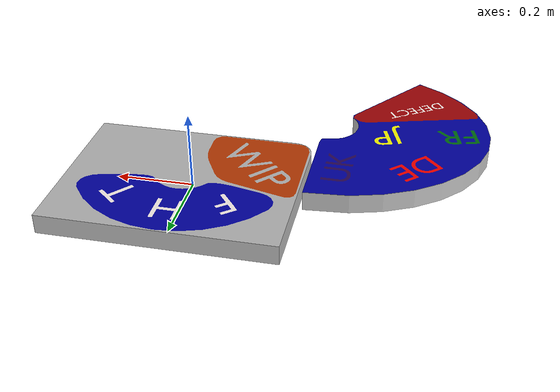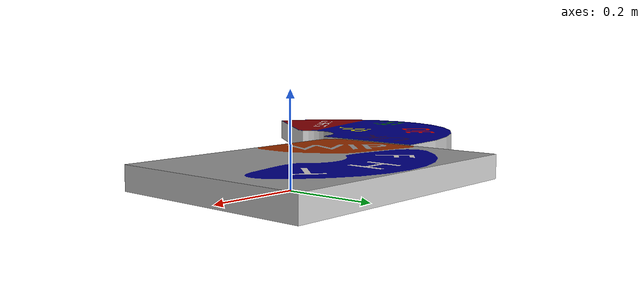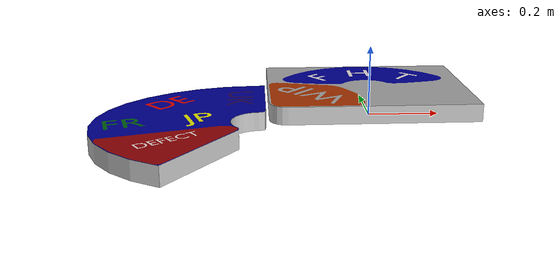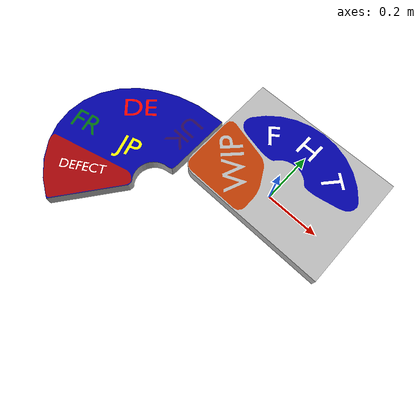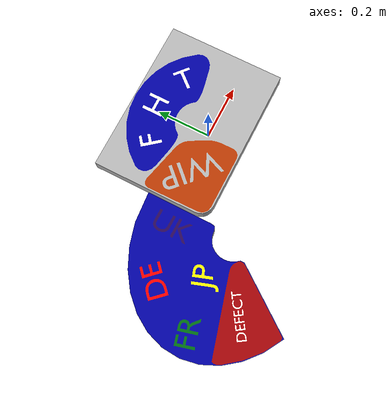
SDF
<?xml version='1.0'?>
<sdf version='1.4'>
  <model name="production_zones_static">
    <static>true</static>
    <pose>0 0 0 0 0 0</pose>

    <link name="test_zones">
      <pose>0 0 0.02 0 0 0</pose>
      <visual name="colored-zones">
        <geometry>
          <mesh>
            <uri>model://production_zones_static/meshes/production_zones_static.dae</uri>
          </mesh>
        </geometry>
      </visual>
      <collision name="colored-zones">
        <geometry>
          <mesh>
            <uri>model://production_zones_static/meshes/production_zones_static.dae</uri>
          </mesh>
        </geometry>
      </collision>
    </link>

  </model>
</sdf>
